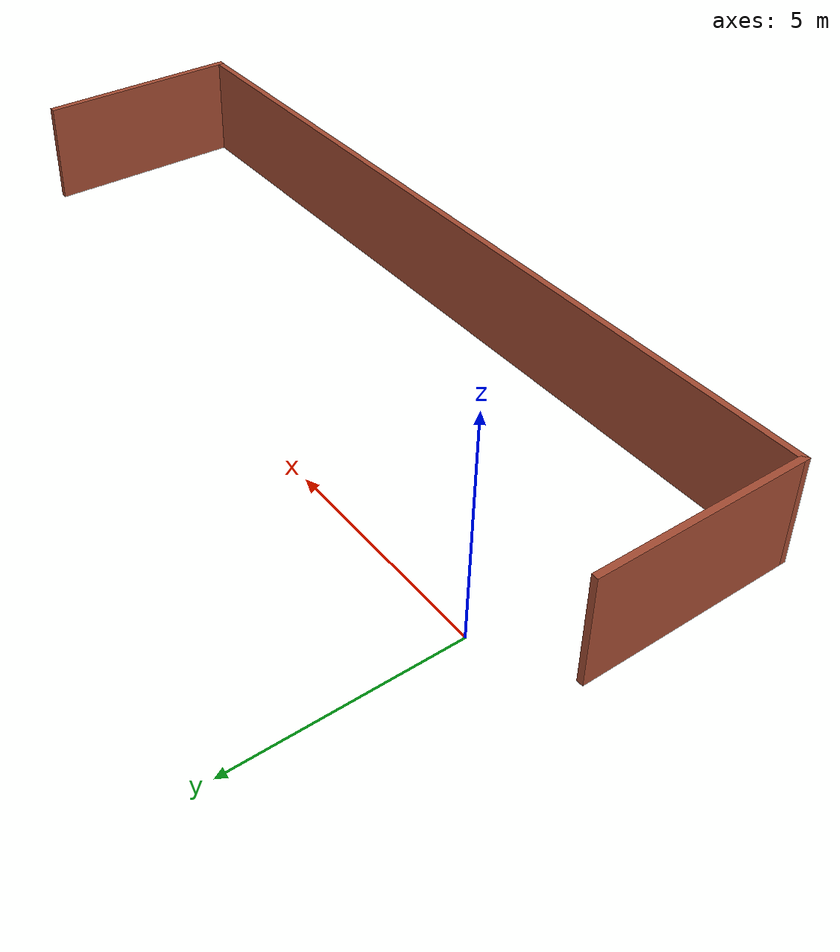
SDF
<?xml version='1.0'?>
<sdf version='1.6'>
  <model name='wall'>
    <pose frame=''>8.10523 -3.435 0 0 -0 0</pose>
    <link name='Wall_0'>
      <collision name='Wall_0_Collision'>
        <geometry>
          <box>
            <size>5 0.15 2.5</size>
          </box>
        </geometry>
        <pose frame=''>0 0 1.25 0 -0 0</pose>
      </collision>
      <visual name='Wall_0_Visual'>
        <pose frame=''>0 0 1.25 0 -0 0</pose>
        <geometry>
          <box>
            <size>5 0.15 2.5</size>
          </box>
        </geometry>
        <material>
          <script>
            <uri>file://media/materials/scripts/gazebo.material</uri>
            <name>Gazebo/Bricks</name>
          </script>
          <ambient>1 0.764706 0.305882 1</ambient>
        </material>
        <meta>
          <layer>0</layer>
        </meta>
      </visual>
      <pose frame=''>-9.96523 0 0 0 0 -1.5708</pose>
    </link>
    <link name='Wall_1'>
      <collision name='Wall_1_Collision'>
        <geometry>
          <box>
            <size>20.0805 0.15 2.5</size>
          </box>
        </geometry>
        <pose frame=''>0 0 1.25 0 -0 0</pose>
      </collision>
      <visual name='Wall_1_Visual'>
        <pose frame=''>0 0 1.25 0 -0 0</pose>
        <geometry>
          <box>
            <size>20.0805 0.15 2.5</size>
          </box>
        </geometry>
        <material>
          <script>
            <uri>file://media/materials/scripts/gazebo.material</uri>
            <name>Gazebo/Bricks</name>
          </script>
          <ambient>1 0.764706 0.305882 1</ambient>
        </material>
        <meta>
          <layer>0</layer>
        </meta>
      </visual>
      <pose frame=''>0 -2.425 0 0 -0 0</pose>
    </link>
    <link name='Wall_4'>
      <collision name='Wall_4_Collision'>
        <geometry>
          <box>
            <size>5 0.15 2.5</size>
          </box>
        </geometry>
        <pose frame=''>0 0 1.25 0 -0 0</pose>
      </collision>
      <visual name='Wall_4_Visual'>
        <pose frame=''>0 0 1.25 0 -0 0</pose>
        <geometry>
          <box>
            <size>5 0.15 2.5</size>
          </box>
        </geometry>
        <material>
          <script>
            <uri>file://media/materials/scripts/gazebo.material</uri>
            <name>Gazebo/Bricks</name>
          </script>
          <ambient>1 0.764706 0.305882 1</ambient>
        </material>
        <meta>
          <layer>0</layer>
        </meta>
      </visual>
      <pose frame=''>9.96523 0 0 0 -0 1.5708</pose>
    </link>
    <static>1</static>
  </model>
</sdf>
